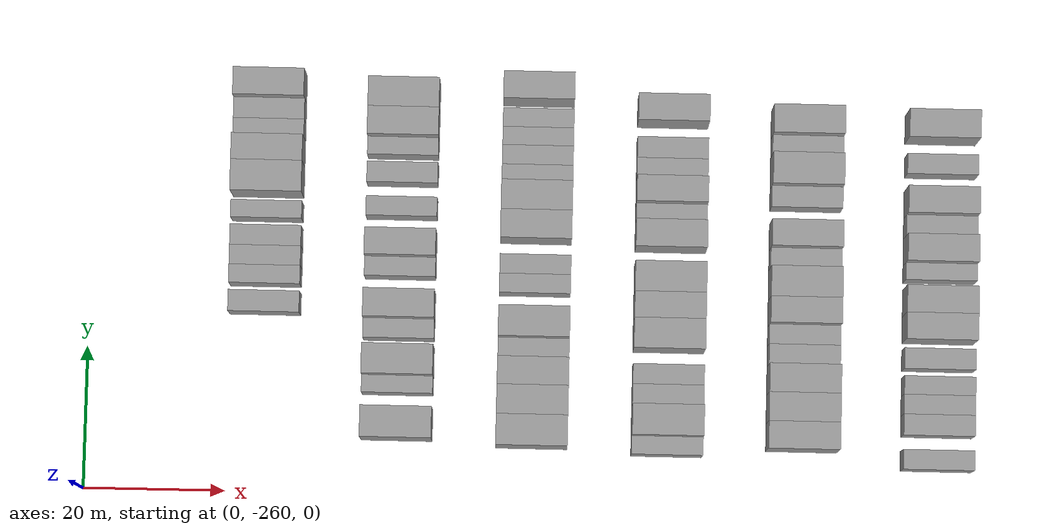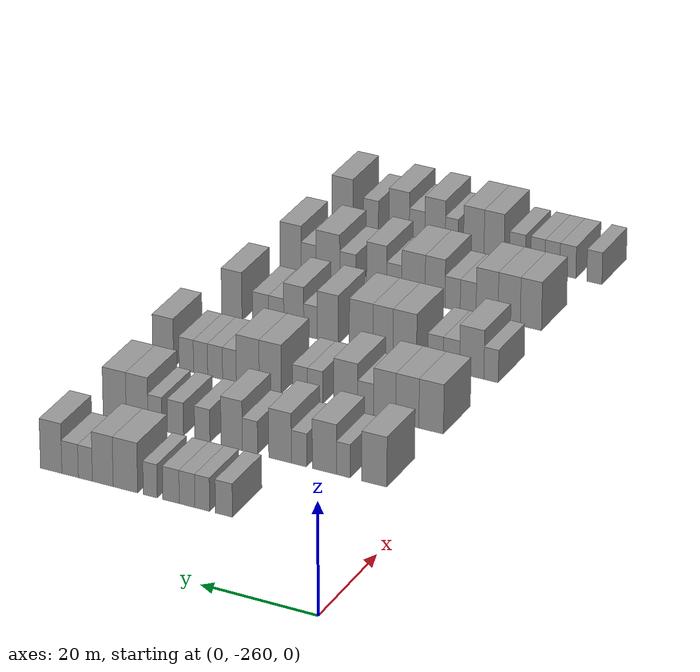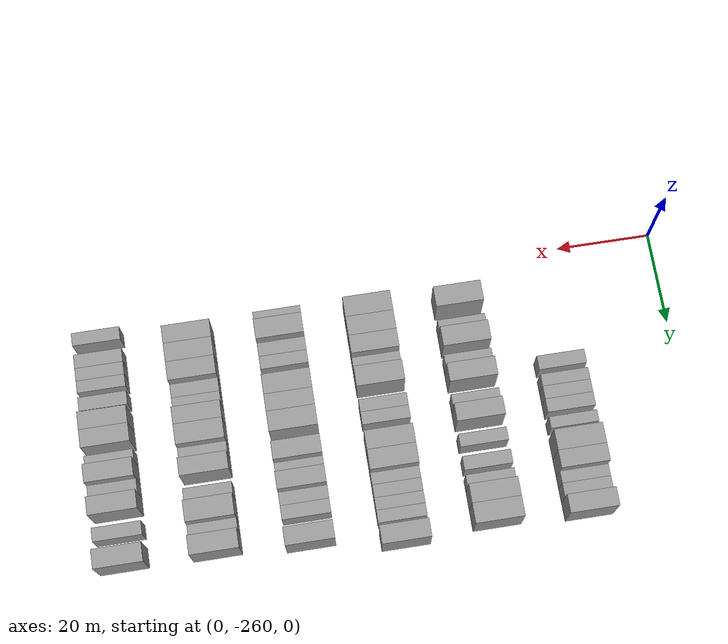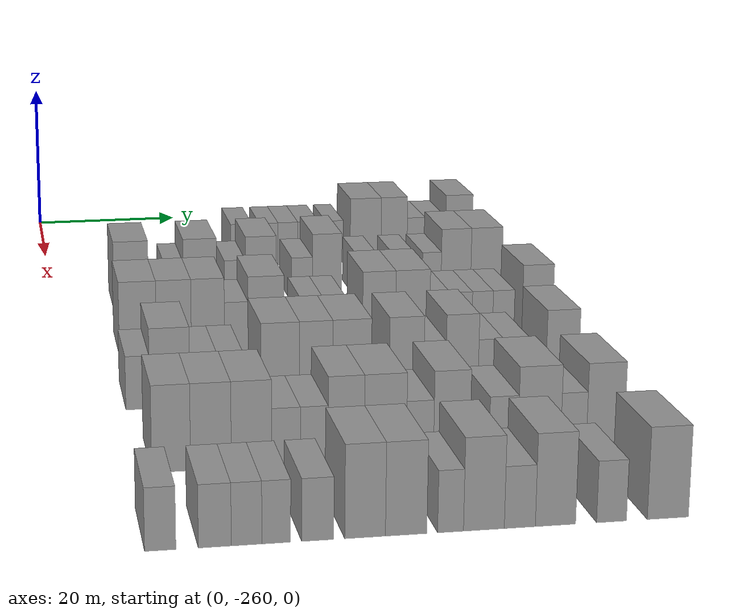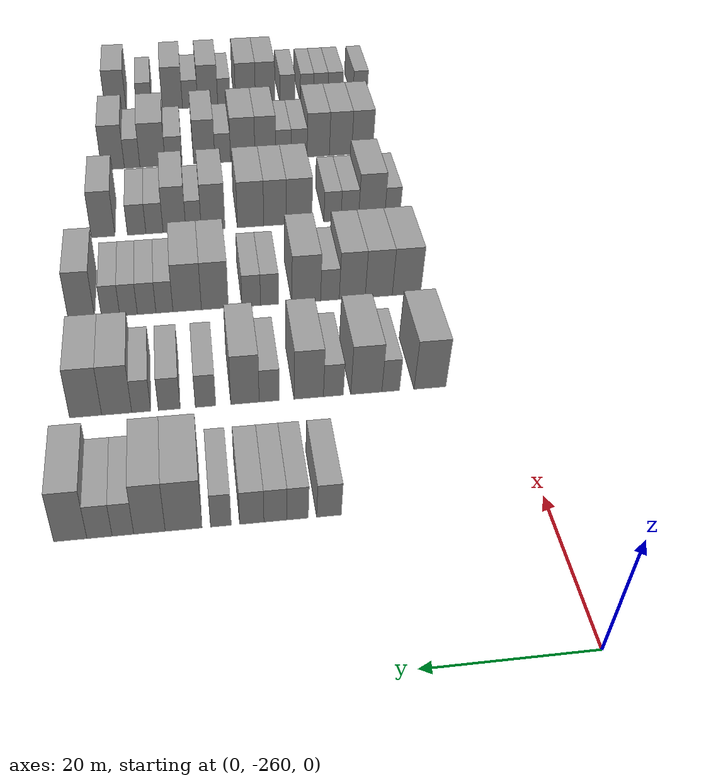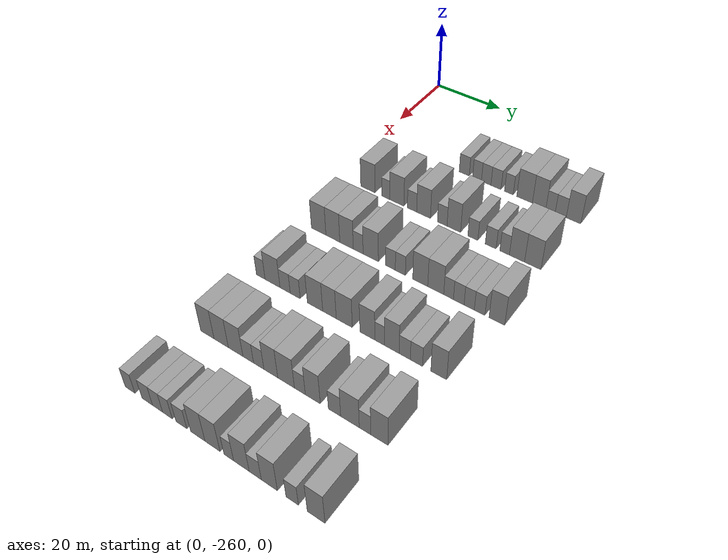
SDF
<sdf version="1.6">
 <world name="default">
  <model name="building_26">
   <static>1</static>
   <pose>25.0000 -233.5116 0 0.000000 0.000000 0.000000</pose>
   <link name="link">
    <pose>0 0 3.00 0 0 0</pose>
    <collision name="collision"><geometry><box><size>10.0000 2.9897 6.0000</size></box></geometry></collision>
    <visual name="visual">
     <cast_shadows>0</cast_shadows>
     <geometry><box><size>10.0000 2.9897 6.0000</size></box></geometry>
     <material>
      <script>
       <uri>model://grey_wall/materials/scripts</uri>
       <uri>model://grey_wall/materials/textures</uri>
       <name>vrc/grey_wall</name>
      </script>
     </material>
    </visual>
   </link>
  </model>
  <model name="building_27">
   <static>1</static>
   <pose>25.0000 -229.7258 0 0.000000 0.000000 0.000000</pose>
   <link name="link">
    <pose>0 0 3.00 0 0 0</pose>
    <collision name="collision"><geometry><box><size>10.0000 2.5821 6.0000</size></box></geometry></collision>
    <visual name="visual">
     <cast_shadows>0</cast_shadows>
     <geometry><box><size>10.0000 2.5821 6.0000</size></box></geometry>
     <material>
      <script>
       <uri>model://grey_wall/materials/scripts</uri>
       <uri>model://grey_wall/materials/textures</uri>
       <name>vrc/grey_wall</name>
      </script>
     </material>
    </visual>
   </link>
  </model>
  <model name="building_28">
   <static>1</static>
   <pose>25.0000 -227.0556 0 0.000000 0.000000 0.000000</pose>
   <link name="link">
    <pose>0 0 3.00 0 0 0</pose>
    <collision name="collision"><geometry><box><size>10.0000 2.7582 6.0000</size></box></geometry></collision>
    <visual name="visual">
     <cast_shadows>0</cast_shadows>
     <geometry><box><size>10.0000 2.7582 6.0000</size></box></geometry>
     <material>
      <script>
       <uri>model://grey_wall/materials/scripts</uri>
       <uri>model://grey_wall/materials/textures</uri>
       <name>vrc/grey_wall</name>
      </script>
     </material>
    </visual>
   </link>
  </model>
  <model name="building_29">
   <static>1</static>
   <pose>25.0000 -224.2311 0 0.000000 0.000000 0.000000</pose>
   <link name="link">
    <pose>0 0 3.00 0 0 0</pose>
    <collision name="collision"><geometry><box><size>10.0000 2.8908 6.0000</size></box></geometry></collision>
    <visual name="visual">
     <cast_shadows>0</cast_shadows>
     <geometry><box><size>10.0000 2.8908 6.0000</size></box></geometry>
     <material>
      <script>
       <uri>model://grey_wall/materials/scripts</uri>
       <uri>model://grey_wall/materials/textures</uri>
       <name>vrc/grey_wall</name>
      </script>
     </material>
    </visual>
   </link>
  </model>
  <model name="building_30">
   <static>1</static>
   <pose>25.0000 -220.5526 0 0.000000 0.000000 0.000000</pose>
   <link name="link">
    <pose>0 0 3.00 0 0 0</pose>
    <collision name="collision"><geometry><box><size>10.0000 2.4663 6.0000</size></box></geometry></collision>
    <visual name="visual">
     <cast_shadows>0</cast_shadows>
     <geometry><box><size>10.0000 2.4663 6.0000</size></box></geometry>
     <material>
      <script>
       <uri>model://grey_wall/materials/scripts</uri>
       <uri>model://grey_wall/materials/textures</uri>
       <name>vrc/grey_wall</name>
      </script>
     </material>
    </visual>
   </link>
  </model>
  <model name="building_31">
   <static>1</static>
   <pose>25.0000 -216.1417 0 0.000000 0.000000 0.000000</pose>
   <link name="link">
    <pose>0 0 4.50 0 0 0</pose>
    <collision name="collision"><geometry><box><size>10.0000 4.3555 9.0000</size></box></geometry></collision>
    <visual name="visual">
     <cast_shadows>0</cast_shadows>
     <geometry><box><size>10.0000 4.3555 9.0000</size></box></geometry>
     <material>
      <script>
       <uri>model://grey_wall/materials/scripts</uri>
       <uri>model://grey_wall/materials/textures</uri>
       <name>vrc/grey_wall</name>
      </script>
     </material>
    </visual>
   </link>
  </model>
  <model name="building_32">
   <static>1</static>
   <pose>25.0000 -212.1116 0 0.000000 0.000000 0.000000</pose>
   <link name="link">
    <pose>0 0 4.50 0 0 0</pose>
    <collision name="collision"><geometry><box><size>10.0000 3.7047 9.0000</size></box></geometry></collision>
    <visual name="visual">
     <cast_shadows>0</cast_shadows>
     <geometry><box><size>10.0000 3.7047 9.0000</size></box></geometry>
     <material>
      <script>
       <uri>model://grey_wall/materials/scripts</uri>
       <uri>model://grey_wall/materials/textures</uri>
       <name>vrc/grey_wall</name>
      </script>
     </material>
    </visual>
   </link>
  </model>
  <model name="building_33">
   <static>1</static>
   <pose>25.0000 -208.9990 0 0.000000 0.000000 0.000000</pose>
   <link name="link">
    <pose>0 0 3.00 0 0 0</pose>
    <collision name="collision"><geometry><box><size>10.0000 2.5204 6.0000</size></box></geometry></collision>
    <visual name="visual">
     <cast_shadows>0</cast_shadows>
     <geometry><box><size>10.0000 2.5204 6.0000</size></box></geometry>
     <material>
      <script>
       <uri>model://grey_wall/materials/scripts</uri>
       <uri>model://grey_wall/materials/textures</uri>
       <name>vrc/grey_wall</name>
      </script>
     </material>
    </visual>
   </link>
  </model>
  <model name="building_34">
   <static>1</static>
   <pose>25.0000 -206.2653 0 0.000000 0.000000 0.000000</pose>
   <link name="link">
    <pose>0 0 3.00 0 0 0</pose>
    <collision name="collision"><geometry><box><size>10.0000 2.9470 6.0000</size></box></geometry></collision>
    <visual name="visual">
     <cast_shadows>0</cast_shadows>
     <geometry><box><size>10.0000 2.9470 6.0000</size></box></geometry>
     <material>
      <script>
       <uri>model://grey_wall/materials/scripts</uri>
       <uri>model://grey_wall/materials/textures</uri>
       <name>vrc/grey_wall</name>
      </script>
     </material>
    </visual>
   </link>
  </model>
  <model name="building_35">
   <static>1</static>
   <pose>25.0000 -202.8651 0 0.000000 0.000000 0.000000</pose>
   <link name="link">
    <pose>0 0 4.50 0 0 0</pose>
    <collision name="collision"><geometry><box><size>10.0000 3.8532 9.0000</size></box></geometry></collision>
    <visual name="visual">
     <cast_shadows>0</cast_shadows>
     <geometry><box><size>10.0000 3.8532 9.0000</size></box></geometry>
     <material>
      <script>
       <uri>model://grey_wall/materials/scripts</uri>
       <uri>model://grey_wall/materials/textures</uri>
       <name>vrc/grey_wall</name>
      </script>
     </material>
    </visual>
   </link>
  </model>
  <model name="building_201">
   <static>1</static>
   <pose>44.0000 -250.1969 0 0.000000 0.000000 0.000000</pose>
   <link name="link">
    <pose>0 0 4.50 0 0 0</pose>
    <collision name="collision"><geometry><box><size>10.0000 4.4039 9.0000</size></box></geometry></collision>
    <visual name="visual">
     <cast_shadows>0</cast_shadows>
     <geometry><box><size>10.0000 4.4039 9.0000</size></box></geometry>
     <material>
      <script>
       <uri>model://grey_wall/materials/scripts</uri>
       <uri>model://grey_wall/materials/textures</uri>
       <name>vrc/grey_wall</name>
      </script>
     </material>
    </visual>
   </link>
  </model>
  <model name="building_202">
   <static>1</static>
   <pose>44.0000 -244.7745 0 0.000000 0.000000 0.000000</pose>
   <link name="link">
    <pose>0 0 3.00 0 0 0</pose>
    <collision name="collision"><geometry><box><size>10.0000 2.4409 6.0000</size></box></geometry></collision>
    <visual name="visual">
     <cast_shadows>0</cast_shadows>
     <geometry><box><size>10.0000 2.4409 6.0000</size></box></geometry>
     <material>
      <script>
       <uri>model://grey_wall/materials/scripts</uri>
       <uri>model://grey_wall/materials/textures</uri>
       <name>vrc/grey_wall</name>
      </script>
     </material>
    </visual>
   </link>
  </model>
  <model name="building_203">
   <static>1</static>
   <pose>44.0000 -241.4277 0 0.000000 0.000000 0.000000</pose>
   <link name="link">
    <pose>0 0 4.50 0 0 0</pose>
    <collision name="collision"><geometry><box><size>10.0000 4.2526 9.0000</size></box></geometry></collision>
    <visual name="visual">
     <cast_shadows>0</cast_shadows>
     <geometry><box><size>10.0000 4.2526 9.0000</size></box></geometry>
     <material>
      <script>
       <uri>model://grey_wall/materials/scripts</uri>
       <uri>model://grey_wall/materials/textures</uri>
       <name>vrc/grey_wall</name>
      </script>
     </material>
    </visual>
   </link>
  </model>
  <model name="building_204">
   <static>1</static>
   <pose>44.0000 -236.9401 0 0.000000 0.000000 0.000000</pose>
   <link name="link">
    <pose>0 0 3.00 0 0 0</pose>
    <collision name="collision"><geometry><box><size>10.0000 2.7226 6.0000</size></box></geometry></collision>
    <visual name="visual">
     <cast_shadows>0</cast_shadows>
     <geometry><box><size>10.0000 2.7226 6.0000</size></box></geometry>
     <material>
      <script>
       <uri>model://grey_wall/materials/scripts</uri>
       <uri>model://grey_wall/materials/textures</uri>
       <name>vrc/grey_wall</name>
      </script>
     </material>
    </visual>
   </link>
  </model>
  <model name="building_205">
   <static>1</static>
   <pose>44.0000 -233.5888 0 0.000000 0.000000 0.000000</pose>
   <link name="link">
    <pose>0 0 4.50 0 0 0</pose>
    <collision name="collision"><geometry><box><size>10.0000 3.9799 9.0000</size></box></geometry></collision>
    <visual name="visual">
     <cast_shadows>0</cast_shadows>
     <geometry><box><size>10.0000 3.9799 9.0000</size></box></geometry>
     <material>
      <script>
       <uri>model://grey_wall/materials/scripts</uri>
       <uri>model://grey_wall/materials/textures</uri>
       <name>vrc/grey_wall</name>
      </script>
     </material>
    </visual>
   </link>
  </model>
  <model name="building_206">
   <static>1</static>
   <pose>44.0000 -228.2419 0 0.000000 0.000000 0.000000</pose>
   <link name="link">
    <pose>0 0 3.00 0 0 0</pose>
    <collision name="collision"><geometry><box><size>10.0000 2.7140 6.0000</size></box></geometry></collision>
    <visual name="visual">
     <cast_shadows>0</cast_shadows>
     <geometry><box><size>10.0000 2.7140 6.0000</size></box></geometry>
     <material>
      <script>
       <uri>model://grey_wall/materials/scripts</uri>
       <uri>model://grey_wall/materials/textures</uri>
       <name>vrc/grey_wall</name>
      </script>
     </material>
    </visual>
   </link>
  </model>
  <model name="building_207">
   <static>1</static>
   <pose>44.0000 -224.9918 0 0.000000 0.000000 0.000000</pose>
   <link name="link">
    <pose>0 0 4.50 0 0 0</pose>
    <collision name="collision"><geometry><box><size>10.0000 3.7862 9.0000</size></box></geometry></collision>
    <visual name="visual">
     <cast_shadows>0</cast_shadows>
     <geometry><box><size>10.0000 3.7862 9.0000</size></box></geometry>
     <material>
      <script>
       <uri>model://grey_wall/materials/scripts</uri>
       <uri>model://grey_wall/materials/textures</uri>
       <name>vrc/grey_wall</name>
      </script>
     </material>
    </visual>
   </link>
  </model>
  <model name="building_208">
   <static>1</static>
   <pose>44.0000 -219.7328 0 0.000000 0.000000 0.000000</pose>
   <link name="link">
    <pose>0 0 3.00 0 0 0</pose>
    <collision name="collision"><geometry><box><size>10.0000 2.7319 6.0000</size></box></geometry></collision>
    <visual name="visual">
     <cast_shadows>0</cast_shadows>
     <geometry><box><size>10.0000 2.7319 6.0000</size></box></geometry>
     <material>
      <script>
       <uri>model://grey_wall/materials/scripts</uri>
       <uri>model://grey_wall/materials/textures</uri>
       <name>vrc/grey_wall</name>
      </script>
     </material>
    </visual>
   </link>
  </model>
  <model name="building_209">
   <static>1</static>
   <pose>44.0000 -214.9180 0 0.000000 0.000000 0.000000</pose>
   <link name="link">
    <pose>0 0 3.00 0 0 0</pose>
    <collision name="collision"><geometry><box><size>10.0000 2.8978 6.0000</size></box></geometry></collision>
    <visual name="visual">
     <cast_shadows>0</cast_shadows>
     <geometry><box><size>10.0000 2.8978 6.0000</size></box></geometry>
     <material>
      <script>
       <uri>model://grey_wall/materials/scripts</uri>
       <uri>model://grey_wall/materials/textures</uri>
       <name>vrc/grey_wall</name>
      </script>
     </material>
    </visual>
   </link>
  </model>
  <model name="building_210">
   <static>1</static>
   <pose>44.0000 -211.2154 0 0.000000 0.000000 0.000000</pose>
   <link name="link">
    <pose>0 0 3.00 0 0 0</pose>
    <collision name="collision"><geometry><box><size>10.0000 2.5073 6.0000</size></box></geometry></collision>
    <visual name="visual">
     <cast_shadows>0</cast_shadows>
     <geometry><box><size>10.0000 2.5073 6.0000</size></box></geometry>
     <material>
      <script>
       <uri>model://grey_wall/materials/scripts</uri>
       <uri>model://grey_wall/materials/textures</uri>
       <name>vrc/grey_wall</name>
      </script>
     </material>
    </visual>
   </link>
  </model>
  <model name="building_211">
   <static>1</static>
   <pose>44.0000 -207.9868 0 0.000000 0.000000 0.000000</pose>
   <link name="link">
    <pose>0 0 4.50 0 0 0</pose>
    <collision name="collision"><geometry><box><size>10.0000 3.9499 9.0000</size></box></geometry></collision>
    <visual name="visual">
     <cast_shadows>0</cast_shadows>
     <geometry><box><size>10.0000 3.9499 9.0000</size></box></geometry>
     <material>
      <script>
       <uri>model://grey_wall/materials/scripts</uri>
       <uri>model://grey_wall/materials/textures</uri>
       <name>vrc/grey_wall</name>
      </script>
     </material>
    </visual>
   </link>
  </model>
  <model name="building_212">
   <static>1</static>
   <pose>44.0000 -203.9167 0 0.000000 0.000000 0.000000</pose>
   <link name="link">
    <pose>0 0 4.50 0 0 0</pose>
    <collision name="collision"><geometry><box><size>10.0000 4.1903 9.0000</size></box></geometry></collision>
    <visual name="visual">
     <cast_shadows>0</cast_shadows>
     <geometry><box><size>10.0000 4.1903 9.0000</size></box></geometry>
     <material>
      <script>
       <uri>model://grey_wall/materials/scripts</uri>
       <uri>model://grey_wall/materials/textures</uri>
       <name>vrc/grey_wall</name>
      </script>
     </material>
    </visual>
   </link>
  </model>
  <model name="building_381">
   <static>1</static>
   <pose>63.0000 -250.9351 0 0.000000 0.000000 0.000000</pose>
   <link name="link">
    <pose>0 0 4.50 0 0 0</pose>
    <collision name="collision"><geometry><box><size>10.0000 4.3495 9.0000</size></box></geometry></collision>
    <visual name="visual">
     <cast_shadows>0</cast_shadows>
     <geometry><box><size>10.0000 4.3495 9.0000</size></box></geometry>
     <material>
      <script>
       <uri>model://grey_wall/materials/scripts</uri>
       <uri>model://grey_wall/materials/textures</uri>
       <name>vrc/grey_wall</name>
      </script>
     </material>
    </visual>
   </link>
  </model>
  <model name="building_382">
   <static>1</static>
   <pose>63.0000 -246.7007 0 0.000000 0.000000 0.000000</pose>
   <link name="link">
    <pose>0 0 4.50 0 0 0</pose>
    <collision name="collision"><geometry><box><size>10.0000 4.1193 9.0000</size></box></geometry></collision>
    <visual name="visual">
     <cast_shadows>0</cast_shadows>
     <geometry><box><size>10.0000 4.1193 9.0000</size></box></geometry>
     <material>
      <script>
       <uri>model://grey_wall/materials/scripts</uri>
       <uri>model://grey_wall/materials/textures</uri>
       <name>vrc/grey_wall</name>
      </script>
     </material>
    </visual>
   </link>
  </model>
  <model name="building_383">
   <static>1</static>
   <pose>63.0000 -242.6741 0 0.000000 0.000000 0.000000</pose>
   <link name="link">
    <pose>0 0 4.50 0 0 0</pose>
    <collision name="collision"><geometry><box><size>10.0000 3.9340 9.0000</size></box></geometry></collision>
    <visual name="visual">
     <cast_shadows>0</cast_shadows>
     <geometry><box><size>10.0000 3.9340 9.0000</size></box></geometry>
     <material>
      <script>
       <uri>model://grey_wall/materials/scripts</uri>
       <uri>model://grey_wall/materials/textures</uri>
       <name>vrc/grey_wall</name>
      </script>
     </material>
    </visual>
   </link>
  </model>
  <model name="building_384">
   <static>1</static>
   <pose>63.0000 -239.2967 0 0.000000 0.000000 0.000000</pose>
   <link name="link">
    <pose>0 0 3.00 0 0 0</pose>
    <collision name="collision"><geometry><box><size>10.0000 2.8207 6.0000</size></box></geometry></collision>
    <visual name="visual">
     <cast_shadows>0</cast_shadows>
     <geometry><box><size>10.0000 2.8207 6.0000</size></box></geometry>
     <material>
      <script>
       <uri>model://grey_wall/materials/scripts</uri>
       <uri>model://grey_wall/materials/textures</uri>
       <name>vrc/grey_wall</name>
      </script>
     </material>
    </visual>
   </link>
  </model>
  <model name="building_385">
   <static>1</static>
   <pose>63.0000 -235.7256 0 0.000000 0.000000 0.000000</pose>
   <link name="link">
    <pose>0 0 4.50 0 0 0</pose>
    <collision name="collision"><geometry><box><size>10.0000 4.3216 9.0000</size></box></geometry></collision>
    <visual name="visual">
     <cast_shadows>0</cast_shadows>
     <geometry><box><size>10.0000 4.3216 9.0000</size></box></geometry>
     <material>
      <script>
       <uri>model://grey_wall/materials/scripts</uri>
       <uri>model://grey_wall/materials/textures</uri>
       <name>vrc/grey_wall</name>
      </script>
     </material>
    </visual>
   </link>
  </model>
  <model name="building_386">
   <static>1</static>
   <pose>63.0000 -230.2184 0 0.000000 0.000000 0.000000</pose>
   <link name="link">
    <pose>0 0 3.00 0 0 0</pose>
    <collision name="collision"><geometry><box><size>10.0000 2.6930 6.0000</size></box></geometry></collision>
    <visual name="visual">
     <cast_shadows>0</cast_shadows>
     <geometry><box><size>10.0000 2.6930 6.0000</size></box></geometry>
     <material>
      <script>
       <uri>model://grey_wall/materials/scripts</uri>
       <uri>model://grey_wall/materials/textures</uri>
       <name>vrc/grey_wall</name>
      </script>
     </material>
    </visual>
   </link>
  </model>
  <model name="building_387">
   <static>1</static>
   <pose>63.0000 -227.4957 0 0.000000 0.000000 0.000000</pose>
   <link name="link">
    <pose>0 0 3.00 0 0 0</pose>
    <collision name="collision"><geometry><box><size>10.0000 2.7523 6.0000</size></box></geometry></collision>
    <visual name="visual">
     <cast_shadows>0</cast_shadows>
     <geometry><box><size>10.0000 2.7523 6.0000</size></box></geometry>
     <material>
      <script>
       <uri>model://grey_wall/materials/scripts</uri>
       <uri>model://grey_wall/materials/textures</uri>
       <name>vrc/grey_wall</name>
      </script>
     </material>
    </visual>
   </link>
  </model>
  <model name="building_388">
   <static>1</static>
   <pose>63.0000 -222.1176 0 0.000000 0.000000 0.000000</pose>
   <link name="link">
    <pose>0 0 4.50 0 0 0</pose>
    <collision name="collision"><geometry><box><size>10.0000 4.0041 9.0000</size></box></geometry></collision>
    <visual name="visual">
     <cast_shadows>0</cast_shadows>
     <geometry><box><size>10.0000 4.0041 9.0000</size></box></geometry>
     <material>
      <script>
       <uri>model://grey_wall/materials/scripts</uri>
       <uri>model://grey_wall/materials/textures</uri>
       <name>vrc/grey_wall</name>
      </script>
     </material>
    </visual>
   </link>
  </model>
  <model name="building_389">
   <static>1</static>
   <pose>63.0000 -218.0225 0 0.000000 0.000000 0.000000</pose>
   <link name="link">
    <pose>0 0 4.50 0 0 0</pose>
    <collision name="collision"><geometry><box><size>10.0000 4.1860 9.0000</size></box></geometry></collision>
    <visual name="visual">
     <cast_shadows>0</cast_shadows>
     <geometry><box><size>10.0000 4.1860 9.0000</size></box></geometry>
     <material>
      <script>
       <uri>model://grey_wall/materials/scripts</uri>
       <uri>model://grey_wall/materials/textures</uri>
       <name>vrc/grey_wall</name>
      </script>
     </material>
    </visual>
   </link>
  </model>
  <model name="building_390">
   <static>1</static>
   <pose>63.0000 -214.6827 0 0.000000 0.000000 0.000000</pose>
   <link name="link">
    <pose>0 0 3.00 0 0 0</pose>
    <collision name="collision"><geometry><box><size>10.0000 2.4936 6.0000</size></box></geometry></collision>
    <visual name="visual">
     <cast_shadows>0</cast_shadows>
     <geometry><box><size>10.0000 2.4936 6.0000</size></box></geometry>
     <material>
      <script>
       <uri>model://grey_wall/materials/scripts</uri>
       <uri>model://grey_wall/materials/textures</uri>
       <name>vrc/grey_wall</name>
      </script>
     </material>
    </visual>
   </link>
  </model>
  <model name="building_391">
   <static>1</static>
   <pose>63.0000 -212.0739 0 0.000000 0.000000 0.000000</pose>
   <link name="link">
    <pose>0 0 3.00 0 0 0</pose>
    <collision name="collision"><geometry><box><size>10.0000 2.7241 6.0000</size></box></geometry></collision>
    <visual name="visual">
     <cast_shadows>0</cast_shadows>
     <geometry><box><size>10.0000 2.7241 6.0000</size></box></geometry>
     <material>
      <script>
       <uri>model://grey_wall/materials/scripts</uri>
       <uri>model://grey_wall/materials/textures</uri>
       <name>vrc/grey_wall</name>
      </script>
     </material>
    </visual>
   </link>
  </model>
  <model name="building_392">
   <static>1</static>
   <pose>63.0000 -209.4259 0 0.000000 0.000000 0.000000</pose>
   <link name="link">
    <pose>0 0 3.00 0 0 0</pose>
    <collision name="collision"><geometry><box><size>10.0000 2.5719 6.0000</size></box></geometry></collision>
    <visual name="visual">
     <cast_shadows>0</cast_shadows>
     <geometry><box><size>10.0000 2.5719 6.0000</size></box></geometry>
     <material>
      <script>
       <uri>model://grey_wall/materials/scripts</uri>
       <uri>model://grey_wall/materials/textures</uri>
       <name>vrc/grey_wall</name>
      </script>
     </material>
    </visual>
   </link>
  </model>
  <model name="building_393">
   <static>1</static>
   <pose>63.0000 -206.8123 0 0.000000 0.000000 0.000000</pose>
   <link name="link">
    <pose>0 0 3.00 0 0 0</pose>
    <collision name="collision"><geometry><box><size>10.0000 2.6554 6.0000</size></box></geometry></collision>
    <visual name="visual">
     <cast_shadows>0</cast_shadows>
     <geometry><box><size>10.0000 2.6554 6.0000</size></box></geometry>
     <material>
      <script>
       <uri>model://grey_wall/materials/scripts</uri>
       <uri>model://grey_wall/materials/textures</uri>
       <name>vrc/grey_wall</name>
      </script>
     </material>
    </visual>
   </link>
  </model>
  <model name="building_394">
   <static>1</static>
   <pose>63.0000 -202.5715 0 0.000000 0.000000 0.000000</pose>
   <link name="link">
    <pose>0 0 4.50 0 0 0</pose>
    <collision name="collision"><geometry><box><size>10.0000 3.8262 9.0000</size></box></geometry></collision>
    <visual name="visual">
     <cast_shadows>0</cast_shadows>
     <geometry><box><size>10.0000 3.8262 9.0000</size></box></geometry>
     <material>
      <script>
       <uri>model://grey_wall/materials/scripts</uri>
       <uri>model://grey_wall/materials/textures</uri>
       <name>vrc/grey_wall</name>
      </script>
     </material>
    </visual>
   </link>
  </model>
  <model name="building_552">
   <static>1</static>
   <pose>82.0000 -252.5362 0 0.000000 0.000000 0.000000</pose>
   <link name="link">
    <pose>0 0 3.00 0 0 0</pose>
    <collision name="collision"><geometry><box><size>10.0000 2.5722 6.0000</size></box></geometry></collision>
    <visual name="visual">
     <cast_shadows>0</cast_shadows>
     <geometry><box><size>10.0000 2.5722 6.0000</size></box></geometry>
     <material>
      <script>
       <uri>model://grey_wall/materials/scripts</uri>
       <uri>model://grey_wall/materials/textures</uri>
       <name>vrc/grey_wall</name>
      </script>
     </material>
    </visual>
   </link>
  </model>
  <model name="building_553">
   <static>1</static>
   <pose>82.0000 -249.0735 0 0.000000 0.000000 0.000000</pose>
   <link name="link">
    <pose>0 0 4.50 0 0 0</pose>
    <collision name="collision"><geometry><box><size>10.0000 4.3532 9.0000</size></box></geometry></collision>
    <visual name="visual">
     <cast_shadows>0</cast_shadows>
     <geometry><box><size>10.0000 4.3532 9.0000</size></box></geometry>
     <material>
      <script>
       <uri>model://grey_wall/materials/scripts</uri>
       <uri>model://grey_wall/materials/textures</uri>
       <name>vrc/grey_wall</name>
      </script>
     </material>
    </visual>
   </link>
  </model>
  <model name="building_554">
   <static>1</static>
   <pose>82.0000 -245.4326 0 0.000000 0.000000 0.000000</pose>
   <link name="link">
    <pose>0 0 3.00 0 0 0</pose>
    <collision name="collision"><geometry><box><size>10.0000 2.9284 6.0000</size></box></geometry></collision>
    <visual name="visual">
     <cast_shadows>0</cast_shadows>
     <geometry><box><size>10.0000 2.9284 6.0000</size></box></geometry>
     <material>
      <script>
       <uri>model://grey_wall/materials/scripts</uri>
       <uri>model://grey_wall/materials/textures</uri>
       <name>vrc/grey_wall</name>
      </script>
     </material>
    </visual>
   </link>
  </model>
  <model name="building_555">
   <static>1</static>
   <pose>82.0000 -242.5557 0 0.000000 0.000000 0.000000</pose>
   <link name="link">
    <pose>0 0 3.00 0 0 0</pose>
    <collision name="collision"><geometry><box><size>10.0000 2.8255 6.0000</size></box></geometry></collision>
    <visual name="visual">
     <cast_shadows>0</cast_shadows>
     <geometry><box><size>10.0000 2.8255 6.0000</size></box></geometry>
     <material>
      <script>
       <uri>model://grey_wall/materials/scripts</uri>
       <uri>model://grey_wall/materials/textures</uri>
       <name>vrc/grey_wall</name>
      </script>
     </material>
    </visual>
   </link>
  </model>
  <model name="building_556">
   <static>1</static>
   <pose>82.0000 -237.0157 0 0.000000 0.000000 0.000000</pose>
   <link name="link">
    <pose>0 0 4.50 0 0 0</pose>
    <collision name="collision"><geometry><box><size>10.0000 4.2543 9.0000</size></box></geometry></collision>
    <visual name="visual">
     <cast_shadows>0</cast_shadows>
     <geometry><box><size>10.0000 4.2543 9.0000</size></box></geometry>
     <material>
      <script>
       <uri>model://grey_wall/materials/scripts</uri>
       <uri>model://grey_wall/materials/textures</uri>
       <name>vrc/grey_wall</name>
      </script>
     </material>
    </visual>
   </link>
  </model>
  <model name="building_557">
   <static>1</static>
   <pose>82.0000 -233.0479 0 0.000000 0.000000 0.000000</pose>
   <link name="link">
    <pose>0 0 4.50 0 0 0</pose>
    <collision name="collision"><geometry><box><size>10.0000 3.6813 9.0000</size></box></geometry></collision>
    <visual name="visual">
     <cast_shadows>0</cast_shadows>
     <geometry><box><size>10.0000 3.6813 9.0000</size></box></geometry>
     <material>
      <script>
       <uri>model://grey_wall/materials/scripts</uri>
       <uri>model://grey_wall/materials/textures</uri>
       <name>vrc/grey_wall</name>
      </script>
     </material>
    </visual>
   </link>
  </model>
  <model name="building_558">
   <static>1</static>
   <pose>82.0000 -229.0603 0 0.000000 0.000000 0.000000</pose>
   <link name="link">
    <pose>0 0 4.50 0 0 0</pose>
    <collision name="collision"><geometry><box><size>10.0000 4.2939 9.0000</size></box></geometry></collision>
    <visual name="visual">
     <cast_shadows>0</cast_shadows>
     <geometry><box><size>10.0000 4.2939 9.0000</size></box></geometry>
     <material>
      <script>
       <uri>model://grey_wall/materials/scripts</uri>
       <uri>model://grey_wall/materials/textures</uri>
       <name>vrc/grey_wall</name>
      </script>
     </material>
    </visual>
   </link>
  </model>
  <model name="building_559">
   <static>1</static>
   <pose>82.0000 -222.9728 0 0.000000 0.000000 0.000000</pose>
   <link name="link">
    <pose>0 0 4.50 0 0 0</pose>
    <collision name="collision"><geometry><box><size>10.0000 3.8810 9.0000</size></box></geometry></collision>
    <visual name="visual">
     <cast_shadows>0</cast_shadows>
     <geometry><box><size>10.0000 3.8810 9.0000</size></box></geometry>
     <material>
      <script>
       <uri>model://grey_wall/materials/scripts</uri>
       <uri>model://grey_wall/materials/textures</uri>
       <name>vrc/grey_wall</name>
      </script>
     </material>
    </visual>
   </link>
  </model>
  <model name="building_560">
   <static>1</static>
   <pose>82.0000 -219.7894 0 0.000000 0.000000 0.000000</pose>
   <link name="link">
    <pose>0 0 3.00 0 0 0</pose>
    <collision name="collision"><geometry><box><size>10.0000 2.4858 6.0000</size></box></geometry></collision>
    <visual name="visual">
     <cast_shadows>0</cast_shadows>
     <geometry><box><size>10.0000 2.4858 6.0000</size></box></geometry>
     <material>
      <script>
       <uri>model://grey_wall/materials/scripts</uri>
       <uri>model://grey_wall/materials/textures</uri>
       <name>vrc/grey_wall</name>
      </script>
     </material>
    </visual>
   </link>
  </model>
  <model name="building_561">
   <static>1</static>
   <pose>82.0000 -216.7074 0 0.000000 0.000000 0.000000</pose>
   <link name="link">
    <pose>0 0 4.50 0 0 0</pose>
    <collision name="collision"><geometry><box><size>10.0000 3.6781 9.0000</size></box></geometry></collision>
    <visual name="visual">
     <cast_shadows>0</cast_shadows>
     <geometry><box><size>10.0000 3.6781 9.0000</size></box></geometry>
     <material>
      <script>
       <uri>model://grey_wall/materials/scripts</uri>
       <uri>model://grey_wall/materials/textures</uri>
       <name>vrc/grey_wall</name>
      </script>
     </material>
    </visual>
   </link>
  </model>
  <model name="building_562">
   <static>1</static>
   <pose>82.0000 -213.4852 0 0.000000 0.000000 0.000000</pose>
   <link name="link">
    <pose>0 0 3.00 0 0 0</pose>
    <collision name="collision"><geometry><box><size>10.0000 2.7663 6.0000</size></box></geometry></collision>
    <visual name="visual">
     <cast_shadows>0</cast_shadows>
     <geometry><box><size>10.0000 2.7663 6.0000</size></box></geometry>
     <material>
      <script>
       <uri>model://grey_wall/materials/scripts</uri>
       <uri>model://grey_wall/materials/textures</uri>
       <name>vrc/grey_wall</name>
      </script>
     </material>
    </visual>
   </link>
  </model>
  <model name="building_563">
   <static>1</static>
   <pose>82.0000 -210.6183 0 0.000000 0.000000 0.000000</pose>
   <link name="link">
    <pose>0 0 3.00 0 0 0</pose>
    <collision name="collision"><geometry><box><size>10.0000 2.9675 6.0000</size></box></geometry></collision>
    <visual name="visual">
     <cast_shadows>0</cast_shadows>
     <geometry><box><size>10.0000 2.9675 6.0000</size></box></geometry>
     <material>
      <script>
       <uri>model://grey_wall/materials/scripts</uri>
       <uri>model://grey_wall/materials/textures</uri>
       <name>vrc/grey_wall</name>
      </script>
     </material>
    </visual>
   </link>
  </model>
  <model name="building_564">
   <static>1</static>
   <pose>82.0000 -205.2464 0 0.000000 0.000000 0.000000</pose>
   <link name="link">
    <pose>0 0 4.50 0 0 0</pose>
    <collision name="collision"><geometry><box><size>10.0000 3.7763 9.0000</size></box></geometry></collision>
    <visual name="visual">
     <cast_shadows>0</cast_shadows>
     <geometry><box><size>10.0000 3.7763 9.0000</size></box></geometry>
     <material>
      <script>
       <uri>model://grey_wall/materials/scripts</uri>
       <uri>model://grey_wall/materials/textures</uri>
       <name>vrc/grey_wall</name>
      </script>
     </material>
    </visual>
   </link>
  </model>
  <model name="building_729">
   <static>1</static>
   <pose>101.0000 -250.8270 0 0.000000 0.000000 0.000000</pose>
   <link name="link">
    <pose>0 0 4.50 0 0 0</pose>
    <collision name="collision"><geometry><box><size>10.0000 3.8375 9.0000</size></box></geometry></collision>
    <visual name="visual">
     <cast_shadows>0</cast_shadows>
     <geometry><box><size>10.0000 3.8375 9.0000</size></box></geometry>
     <material>
      <script>
       <uri>model://grey_wall/materials/scripts</uri>
       <uri>model://grey_wall/materials/textures</uri>
       <name>vrc/grey_wall</name>
      </script>
     </material>
    </visual>
   </link>
  </model>
  <model name="building_730">
   <static>1</static>
   <pose>101.0000 -246.8891 0 0.000000 0.000000 0.000000</pose>
   <link name="link">
    <pose>0 0 4.50 0 0 0</pose>
    <collision name="collision"><geometry><box><size>10.0000 4.0384 9.0000</size></box></geometry></collision>
    <visual name="visual">
     <cast_shadows>0</cast_shadows>
     <geometry><box><size>10.0000 4.0384 9.0000</size></box></geometry>
     <material>
      <script>
       <uri>model://grey_wall/materials/scripts</uri>
       <uri>model://grey_wall/materials/textures</uri>
       <name>vrc/grey_wall</name>
      </script>
     </material>
    </visual>
   </link>
  </model>
  <model name="building_731">
   <static>1</static>
   <pose>101.0000 -242.8564 0 0.000000 0.000000 0.000000</pose>
   <link name="link">
    <pose>0 0 4.50 0 0 0</pose>
    <collision name="collision"><geometry><box><size>10.0000 4.0271 9.0000</size></box></geometry></collision>
    <visual name="visual">
     <cast_shadows>0</cast_shadows>
     <geometry><box><size>10.0000 4.0271 9.0000</size></box></geometry>
     <material>
      <script>
       <uri>model://grey_wall/materials/scripts</uri>
       <uri>model://grey_wall/materials/textures</uri>
       <name>vrc/grey_wall</name>
      </script>
     </material>
    </visual>
   </link>
  </model>
  <model name="building_732">
   <static>1</static>
   <pose>101.0000 -239.3913 0 0.000000 0.000000 0.000000</pose>
   <link name="link">
    <pose>0 0 3.00 0 0 0</pose>
    <collision name="collision"><geometry><box><size>10.0000 2.9031 6.0000</size></box></geometry></collision>
    <visual name="visual">
     <cast_shadows>0</cast_shadows>
     <geometry><box><size>10.0000 2.9031 6.0000</size></box></geometry>
     <material>
      <script>
       <uri>model://grey_wall/materials/scripts</uri>
       <uri>model://grey_wall/materials/textures</uri>
       <name>vrc/grey_wall</name>
      </script>
     </material>
    </visual>
   </link>
  </model>
  <model name="building_733">
   <static>1</static>
   <pose>101.0000 -236.5523 0 0.000000 0.000000 0.000000</pose>
   <link name="link">
    <pose>0 0 3.00 0 0 0</pose>
    <collision name="collision"><geometry><box><size>10.0000 2.7750 6.0000</size></box></geometry></collision>
    <visual name="visual">
     <cast_shadows>0</cast_shadows>
     <geometry><box><size>10.0000 2.7750 6.0000</size></box></geometry>
     <material>
      <script>
       <uri>model://grey_wall/materials/scripts</uri>
       <uri>model://grey_wall/materials/textures</uri>
       <name>vrc/grey_wall</name>
      </script>
     </material>
    </visual>
   </link>
  </model>
  <model name="building_734">
   <static>1</static>
   <pose>101.0000 -233.3310 0 0.000000 0.000000 0.000000</pose>
   <link name="link">
    <pose>0 0 4.50 0 0 0</pose>
    <collision name="collision"><geometry><box><size>10.0000 3.6675 9.0000</size></box></geometry></collision>
    <visual name="visual">
     <cast_shadows>0</cast_shadows>
     <geometry><box><size>10.0000 3.6675 9.0000</size></box></geometry>
     <material>
      <script>
       <uri>model://grey_wall/materials/scripts</uri>
       <uri>model://grey_wall/materials/textures</uri>
       <name>vrc/grey_wall</name>
      </script>
     </material>
    </visual>
   </link>
  </model>
  <model name="building_735">
   <static>1</static>
   <pose>101.0000 -229.3396 0 0.000000 0.000000 0.000000</pose>
   <link name="link">
    <pose>0 0 4.50 0 0 0</pose>
    <collision name="collision"><geometry><box><size>10.0000 4.3154 9.0000</size></box></geometry></collision>
    <visual name="visual">
     <cast_shadows>0</cast_shadows>
     <geometry><box><size>10.0000 4.3154 9.0000</size></box></geometry>
     <material>
      <script>
       <uri>model://grey_wall/materials/scripts</uri>
       <uri>model://grey_wall/materials/textures</uri>
       <name>vrc/grey_wall</name>
      </script>
     </material>
    </visual>
   </link>
  </model>
  <model name="building_736">
   <static>1</static>
   <pose>101.0000 -225.7899 0 0.000000 0.000000 0.000000</pose>
   <link name="link">
    <pose>0 0 3.00 0 0 0</pose>
    <collision name="collision"><geometry><box><size>10.0000 2.7839 6.0000</size></box></geometry></collision>
    <visual name="visual">
     <cast_shadows>0</cast_shadows>
     <geometry><box><size>10.0000 2.7839 6.0000</size></box></geometry>
     <material>
      <script>
       <uri>model://grey_wall/materials/scripts</uri>
       <uri>model://grey_wall/materials/textures</uri>
       <name>vrc/grey_wall</name>
      </script>
     </material>
    </visual>
   </link>
  </model>
  <model name="building_737">
   <static>1</static>
   <pose>101.0000 -222.5236 0 0.000000 0.000000 0.000000</pose>
   <link name="link">
    <pose>0 0 4.50 0 0 0</pose>
    <collision name="collision"><geometry><box><size>10.0000 3.7488 9.0000</size></box></geometry></collision>
    <visual name="visual">
     <cast_shadows>0</cast_shadows>
     <geometry><box><size>10.0000 3.7488 9.0000</size></box></geometry>
     <material>
      <script>
       <uri>model://grey_wall/materials/scripts</uri>
       <uri>model://grey_wall/materials/textures</uri>
       <name>vrc/grey_wall</name>
      </script>
     </material>
    </visual>
   </link>
  </model>
  <model name="building_738">
   <static>1</static>
   <pose>101.0000 -217.1507 0 0.000000 0.000000 0.000000</pose>
   <link name="link">
    <pose>0 0 3.00 0 0 0</pose>
    <collision name="collision"><geometry><box><size>10.0000 2.9969 6.0000</size></box></geometry></collision>
    <visual name="visual">
     <cast_shadows>0</cast_shadows>
     <geometry><box><size>10.0000 2.9969 6.0000</size></box></geometry>
     <material>
      <script>
       <uri>model://grey_wall/materials/scripts</uri>
       <uri>model://grey_wall/materials/textures</uri>
       <name>vrc/grey_wall</name>
      </script>
     </material>
    </visual>
   </link>
  </model>
  <model name="building_739">
   <static>1</static>
   <pose>101.0000 -213.4175 0 0.000000 0.000000 0.000000</pose>
   <link name="link">
    <pose>0 0 4.50 0 0 0</pose>
    <collision name="collision"><geometry><box><size>10.0000 4.4697 9.0000</size></box></geometry></collision>
    <visual name="visual">
     <cast_shadows>0</cast_shadows>
     <geometry><box><size>10.0000 4.4697 9.0000</size></box></geometry>
     <material>
      <script>
       <uri>model://grey_wall/materials/scripts</uri>
       <uri>model://grey_wall/materials/textures</uri>
       <name>vrc/grey_wall</name>
      </script>
     </material>
    </visual>
   </link>
  </model>
  <model name="building_740">
   <static>1</static>
   <pose>101.0000 -209.8270 0 0.000000 0.000000 0.000000</pose>
   <link name="link">
    <pose>0 0 3.00 0 0 0</pose>
    <collision name="collision"><geometry><box><size>10.0000 2.7113 6.0000</size></box></geometry></collision>
    <visual name="visual">
     <cast_shadows>0</cast_shadows>
     <geometry><box><size>10.0000 2.7113 6.0000</size></box></geometry>
     <material>
      <script>
       <uri>model://grey_wall/materials/scripts</uri>
       <uri>model://grey_wall/materials/textures</uri>
       <name>vrc/grey_wall</name>
      </script>
     </material>
    </visual>
   </link>
  </model>
  <model name="building_741">
   <static>1</static>
   <pose>101.0000 -206.4743 0 0.000000 0.000000 0.000000</pose>
   <link name="link">
    <pose>0 0 4.50 0 0 0</pose>
    <collision name="collision"><geometry><box><size>10.0000 3.9941 9.0000</size></box></geometry></collision>
    <visual name="visual">
     <cast_shadows>0</cast_shadows>
     <geometry><box><size>10.0000 3.9941 9.0000</size></box></geometry>
     <material>
      <script>
       <uri>model://grey_wall/materials/scripts</uri>
       <uri>model://grey_wall/materials/textures</uri>
       <name>vrc/grey_wall</name>
      </script>
     </material>
    </visual>
   </link>
  </model>
  <model name="building_901">
   <static>1</static>
   <pose>120.0000 -253.6978 0 0.000000 0.000000 0.000000</pose>
   <link name="link">
    <pose>0 0 3.00 0 0 0</pose>
    <collision name="collision"><geometry><box><size>10.0000 2.7846 6.0000</size></box></geometry></collision>
    <visual name="visual">
     <cast_shadows>0</cast_shadows>
     <geometry><box><size>10.0000 2.7846 6.0000</size></box></geometry>
     <material>
      <script>
       <uri>model://grey_wall/materials/scripts</uri>
       <uri>model://grey_wall/materials/textures</uri>
       <name>vrc/grey_wall</name>
      </script>
     </material>
    </visual>
   </link>
  </model>
  <model name="building_902">
   <static>1</static>
   <pose>120.0000 -248.8291 0 0.000000 0.000000 0.000000</pose>
   <link name="link">
    <pose>0 0 3.00 0 0 0</pose>
    <collision name="collision"><geometry><box><size>10.0000 2.9529 6.0000</size></box></geometry></collision>
    <visual name="visual">
     <cast_shadows>0</cast_shadows>
     <geometry><box><size>10.0000 2.9529 6.0000</size></box></geometry>
     <material>
      <script>
       <uri>model://grey_wall/materials/scripts</uri>
       <uri>model://grey_wall/materials/textures</uri>
       <name>vrc/grey_wall</name>
      </script>
     </material>
    </visual>
   </link>
  </model>
  <model name="building_903">
   <static>1</static>
   <pose>120.0000 -245.9751 0 0.000000 0.000000 0.000000</pose>
   <link name="link">
    <pose>0 0 3.00 0 0 0</pose>
    <collision name="collision"><geometry><box><size>10.0000 2.7551 6.0000</size></box></geometry></collision>
    <visual name="visual">
     <cast_shadows>0</cast_shadows>
     <geometry><box><size>10.0000 2.7551 6.0000</size></box></geometry>
     <material>
      <script>
       <uri>model://grey_wall/materials/scripts</uri>
       <uri>model://grey_wall/materials/textures</uri>
       <name>vrc/grey_wall</name>
      </script>
     </material>
    </visual>
   </link>
  </model>
  <model name="building_904">
   <static>1</static>
   <pose>120.0000 -243.2929 0 0.000000 0.000000 0.000000</pose>
   <link name="link">
    <pose>0 0 3.00 0 0 0</pose>
    <collision name="collision"><geometry><box><size>10.0000 2.6095 6.0000</size></box></geometry></collision>
    <visual name="visual">
     <cast_shadows>0</cast_shadows>
     <geometry><box><size>10.0000 2.6095 6.0000</size></box></geometry>
     <material>
      <script>
       <uri>model://grey_wall/materials/scripts</uri>
       <uri>model://grey_wall/materials/textures</uri>
       <name>vrc/grey_wall</name>
      </script>
     </material>
    </visual>
   </link>
  </model>
  <model name="building_905">
   <static>1</static>
   <pose>120.0000 -239.5252 0 0.000000 0.000000 0.000000</pose>
   <link name="link">
    <pose>0 0 3.00 0 0 0</pose>
    <collision name="collision"><geometry><box><size>10.0000 2.9258 6.0000</size></box></geometry></collision>
    <visual name="visual">
     <cast_shadows>0</cast_shadows>
     <geometry><box><size>10.0000 2.9258 6.0000</size></box></geometry>
     <material>
      <script>
       <uri>model://grey_wall/materials/scripts</uri>
       <uri>model://grey_wall/materials/textures</uri>
       <name>vrc/grey_wall</name>
      </script>
     </material>
    </visual>
   </link>
  </model>
  <model name="building_906">
   <static>1</static>
   <pose>120.0000 -235.1911 0 0.000000 0.000000 0.000000</pose>
   <link name="link">
    <pose>0 0 4.50 0 0 0</pose>
    <collision name="collision"><geometry><box><size>10.0000 3.7423 9.0000</size></box></geometry></collision>
    <visual name="visual">
     <cast_shadows>0</cast_shadows>
     <geometry><box><size>10.0000 3.7423 9.0000</size></box></geometry>
     <material>
      <script>
       <uri>model://grey_wall/materials/scripts</uri>
       <uri>model://grey_wall/materials/textures</uri>
       <name>vrc/grey_wall</name>
      </script>
     </material>
    </visual>
   </link>
  </model>
  <model name="building_907">
   <static>1</static>
   <pose>120.0000 -231.4062 0 0.000000 0.000000 0.000000</pose>
   <link name="link">
    <pose>0 0 4.50 0 0 0</pose>
    <collision name="collision"><geometry><box><size>10.0000 3.8276 9.0000</size></box></geometry></collision>
    <visual name="visual">
     <cast_shadows>0</cast_shadows>
     <geometry><box><size>10.0000 3.8276 9.0000</size></box></geometry>
     <material>
      <script>
       <uri>model://grey_wall/materials/scripts</uri>
       <uri>model://grey_wall/materials/textures</uri>
       <name>vrc/grey_wall</name>
      </script>
     </material>
    </visual>
   </link>
  </model>
  <model name="building_908">
   <static>1</static>
   <pose>120.0000 -227.2878 0 0.000000 0.000000 0.000000</pose>
   <link name="link">
    <pose>0 0 3.00 0 0 0</pose>
    <collision name="collision"><geometry><box><size>10.0000 2.4092 6.0000</size></box></geometry></collision>
    <visual name="visual">
     <cast_shadows>0</cast_shadows>
     <geometry><box><size>10.0000 2.4092 6.0000</size></box></geometry>
     <material>
      <script>
       <uri>model://grey_wall/materials/scripts</uri>
       <uri>model://grey_wall/materials/textures</uri>
       <name>vrc/grey_wall</name>
      </script>
     </material>
    </visual>
   </link>
  </model>
  <model name="building_909">
   <static>1</static>
   <pose>120.0000 -224.1719 0 0.000000 0.000000 0.000000</pose>
   <link name="link">
    <pose>0 0 4.50 0 0 0</pose>
    <collision name="collision"><geometry><box><size>10.0000 3.8226 9.0000</size></box></geometry></collision>
    <visual name="visual">
     <cast_shadows>0</cast_shadows>
     <geometry><box><size>10.0000 3.8226 9.0000</size></box></geometry>
     <material>
      <script>
       <uri>model://grey_wall/materials/scripts</uri>
       <uri>model://grey_wall/materials/textures</uri>
       <name>vrc/grey_wall</name>
      </script>
     </material>
    </visual>
   </link>
  </model>
  <model name="building_910">
   <static>1</static>
   <pose>120.0000 -220.7992 0 0.000000 0.000000 0.000000</pose>
   <link name="link">
    <pose>0 0 3.00 0 0 0</pose>
    <collision name="collision"><geometry><box><size>10.0000 2.9228 6.0000</size></box></geometry></collision>
    <visual name="visual">
     <cast_shadows>0</cast_shadows>
     <geometry><box><size>10.0000 2.9228 6.0000</size></box></geometry>
     <material>
      <script>
       <uri>model://grey_wall/materials/scripts</uri>
       <uri>model://grey_wall/materials/textures</uri>
       <name>vrc/grey_wall</name>
      </script>
     </material>
    </visual>
   </link>
  </model>
  <model name="building_911">
   <static>1</static>
   <pose>120.0000 -217.4312 0 0.000000 0.000000 0.000000</pose>
   <link name="link">
    <pose>0 0 4.50 0 0 0</pose>
    <collision name="collision"><geometry><box><size>10.0000 3.8130 9.0000</size></box></geometry></collision>
    <visual name="visual">
     <cast_shadows>0</cast_shadows>
     <geometry><box><size>10.0000 3.8130 9.0000</size></box></geometry>
     <material>
      <script>
       <uri>model://grey_wall/materials/scripts</uri>
       <uri>model://grey_wall/materials/textures</uri>
       <name>vrc/grey_wall</name>
      </script>
     </material>
    </visual>
   </link>
  </model>
  <model name="building_912">
   <static>1</static>
   <pose>120.0000 -212.0963 0 0.000000 0.000000 0.000000</pose>
   <link name="link">
    <pose>0 0 3.00 0 0 0</pose>
    <collision name="collision"><geometry><box><size>10.0000 2.8569 6.0000</size></box></geometry></collision>
    <visual name="visual">
     <cast_shadows>0</cast_shadows>
     <geometry><box><size>10.0000 2.8569 6.0000</size></box></geometry>
     <material>
      <script>
       <uri>model://grey_wall/materials/scripts</uri>
       <uri>model://grey_wall/materials/textures</uri>
       <name>vrc/grey_wall</name>
      </script>
     </material>
    </visual>
   </link>
  </model>
  <model name="building_913">
   <static>1</static>
   <pose>120.0000 -206.6844 0 0.000000 0.000000 0.000000</pose>
   <link name="link">
    <pose>0 0 4.50 0 0 0</pose>
    <collision name="collision"><geometry><box><size>10.0000 3.9668 9.0000</size></box></geometry></collision>
    <visual name="visual">
     <cast_shadows>0</cast_shadows>
     <geometry><box><size>10.0000 3.9668 9.0000</size></box></geometry>
     <material>
      <script>
       <uri>model://grey_wall/materials/scripts</uri>
       <uri>model://grey_wall/materials/textures</uri>
       <name>vrc/grey_wall</name>
      </script>
     </material>
    </visual>
   </link>
  </model>
 </world>
</sdf>
